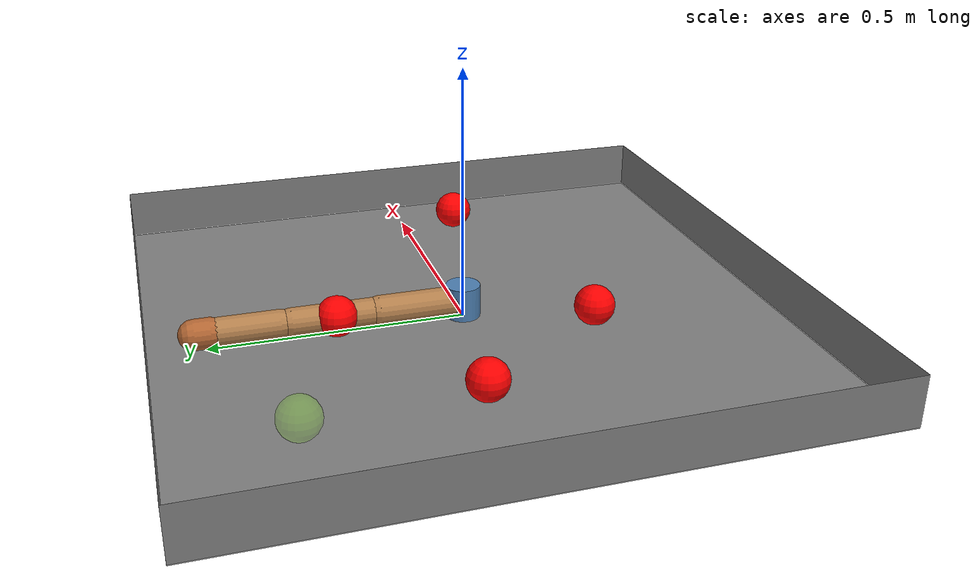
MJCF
<mujoco model="planar point mass">
    <compiler angle="radian" />
    <option timestep="0.01" cone="elliptic" iterations="200" />
    <size njmax="500" nconmax="100" />
    <visual>
        <quality shadowsize="2048" />
        <headlight ambient="0.4 0.4 0.4" diffuse="0.8 0.8 0.8" specular="0.1 0.1 0.1" />
    </visual>
    <default class="finger">
        <geom condim="4" solref="0.005 0.6" solimp="0 0.9 0.01 0.5 2" margin="0.001" />
        <site size="0.025 0.03 0.025" group="3" type="ellipsoid" rgba="0.5 0.5 0.5 0.3" />
        <general ctrllimited="true" ctrlrange="-1 1" />
    </default>
    <asset>
        <texture type="skybox" name="skybox" builtin="gradient" mark="random" rgb1="0.4 0.6 0.8" rgb2="0 0 0" markrgb="1 1 1" width="800" height="4800" />
        <texture type="2d" name="grid" builtin="checker" mark="edge" rgb1="0.1 0.2 0.3" rgb2="0.2 0.3 0.4" markrgb="0.2 0.3 0.4" width="300" height="300" />
        <material name="grid" texture="grid" texuniform="true" reflectance="0.2" />
        <material name="self" rgba="0.7 0.5 0.3 1" />
        <material name="self_default" rgba="0.7 0.5 0.3 1" />
        <material name="self_highlight" rgba="0 0.5 0.3 1" />
        <material name="effector" rgba="0.7 0.4 0.2 1" />
        <material name="effector_default" rgba="0.7 0.4 0.2 1" />
        <material name="effector_highlight" rgba="0 0.5 0.3 1" />
        <material name="decoration" rgba="0.3 0.5 0.7 1" />
        <material name="eye" rgba="0 0.2 1 1" />
        <material name="target" rgba="0.6 0.3 0.3 1" />
        <material name="target_default" rgba="0.6 0.3 0.3 1" />
        <material name="target_highlight" rgba="0.6 0.3 0.3 0.4" />
    </asset>
    <worldbody>
        <geom name="ground" size="0.61 0.61 0.1" type="plane" />
        <geom name="wall_x" size="0.05 0.61 0.02" pos="-0.61 0 0.05" quat="0.707107 0 0.707107 0" type="plane" />
        <geom name="wall_y" size="0.61 0.05 0.02" pos="0 -0.61 0.05" quat="0.707107 -0.707107 0 0" type="plane" />
        <geom name="wall_neg_x" size="0.05 0.61 0.02" pos="0.61 0 0.05" quat="0.707107 0 -0.707107 0" type="plane" />
        <geom name="wall_neg_y" size="0.61 0.05 0.02" pos="0 0.61 0.05" quat="0.707107 0.707107 0 0" type="plane" />
        <camera name="fixed" pos="0 0 0.75" />
        <light name="light" pos="0 0 1" dir="0 0 -1" />
        <body pos="0 0 0.035" quat="0.707107 0.707107 0 0">
            <inertial pos="0 0 -0.0596966" mass="0.805178" diaginertia="0.00338471 0.00336697 0.000410748" />
            <joint name="proximal" pos="0 0 0" axis="0 -1 0" ref="-90" range="-150 -80" damping="0.05" />
            <geom name="proximal_decoration" size="0.034 0.033" quat="0.707107 0.707107 0 0" type="cylinder" material="decoration" />
            <geom name="proximal" size="0.03 0.085" pos="0 0 -0.085" type="capsule" material="self" />
            <body name="distal" childclass="finger" pos="0 0 -0.18">
                <inertial pos="0 0 -0.08" mass="0.463046" diaginertia="0.00145458 0.00145458 0.000181514" />
                <joint name="distal" pos="0 0 0" axis="0 -1 0" range="-50 50" damping="0.05" />
                <geom name="distal" size="0.028 0.08" pos="0 0 -0.08" type="capsule" material="self" />
                <body name="distal2" childclass="finger" pos="0 0 -0.18">
                    <inertial pos="0 0 -0.097776" mass="0.635519" diaginertia="0.00208601 0.00208601 0.000259127" />
                    <joint name="distal2" pos="0 0 0" axis="0 -1 0" range="-50 50" damping="0.05" />
                    <geom name="distal2" size="0.028 0.08" pos="0 0 -0.08" type="capsule" material="self" />
                    <geom name="fingertip2" size="0.03 0.0155" pos="0 0 -0.1455" type="capsule" material="effector" />
                    <site name="touchtop2" pos="0.01 0 -0.17" />
                    <site name="touchbottom2" pos="-0.01 0 -0.17" />
                </body>
            </body>
        </body>

        <body name="k" pos="-0.320089 0.050106 0.04">
            <inertial pos="0 0 0" mass="0.0335103" diaginertia="5.36165e-06 5.36165e-06 5.36165e-06" />
            <geom size="0.04" rgba="1 0 0 1" />
        </body>
        <body name="a" pos="-0.0100812 0.253382 0.04">
            <inertial pos="0 0 0" mass="0.0335103" diaginertia="5.36165e-06 5.36165e-06 5.36165e-06" />
            <geom size="0.04" rgba="1 0 0 1" />
        </body>
        <body name="b" pos="-0.105647 -0.235664 0.04">
            <inertial pos="0 0 0" mass="0.0335103" diaginertia="5.36165e-06 5.36165e-06 5.36165e-06" />
            <geom size="0.04" rgba="1 0 0 1" />
        </body>
        <body name="c" pos="0.453819 -0.111522 0.04">
            <inertial pos="0 0 0" mass="0.0335103" diaginertia="5.36165e-06 5.36165e-06 5.36165e-06" />
            <geom size="0.04" rgba="1 0 0 1" />
        </body>
        <geom name="target" pos="-0.350089 0.38106 0.04" material="target" type="sphere" rgba="0.5 1 0 0.25"  size=".04" contype="0" conaffinity="0"/>

    </worldbody>

    <actuator>
        <general name="proximal" joint="proximal" />
        <general name="distal" joint="distal" gear="1.25 0 0 0 0 0" />
        <general name="distal2" joint="distal2" gear="1.5 0 0 0 0 0" />
    </actuator>
</mujoco>
